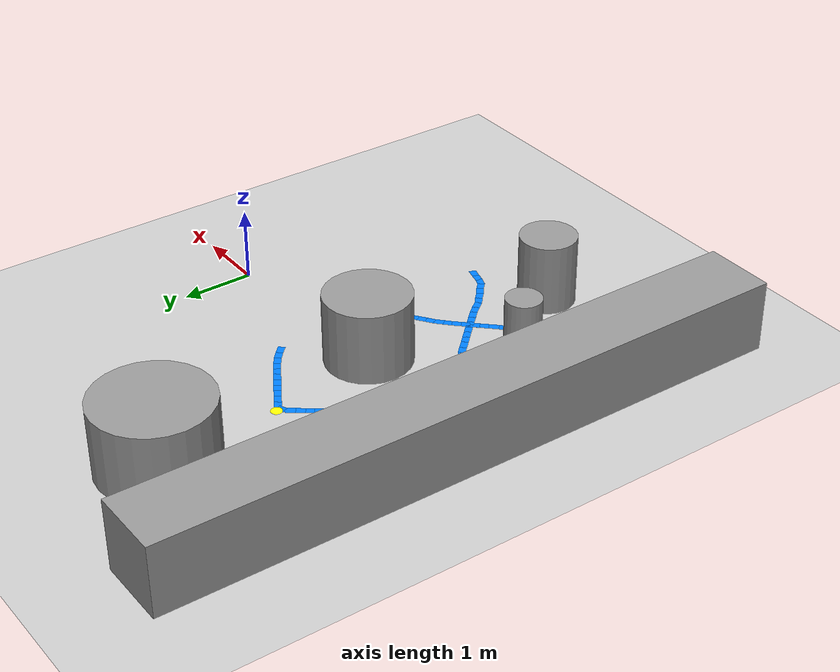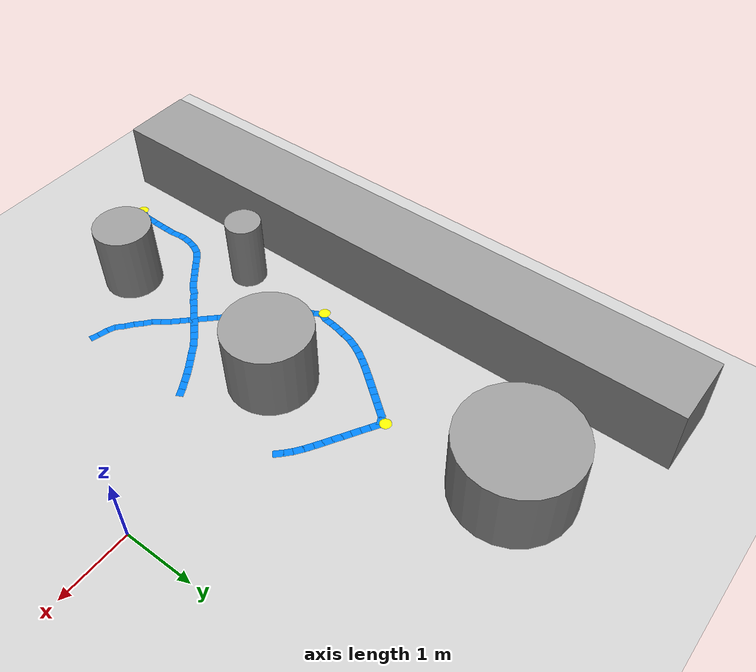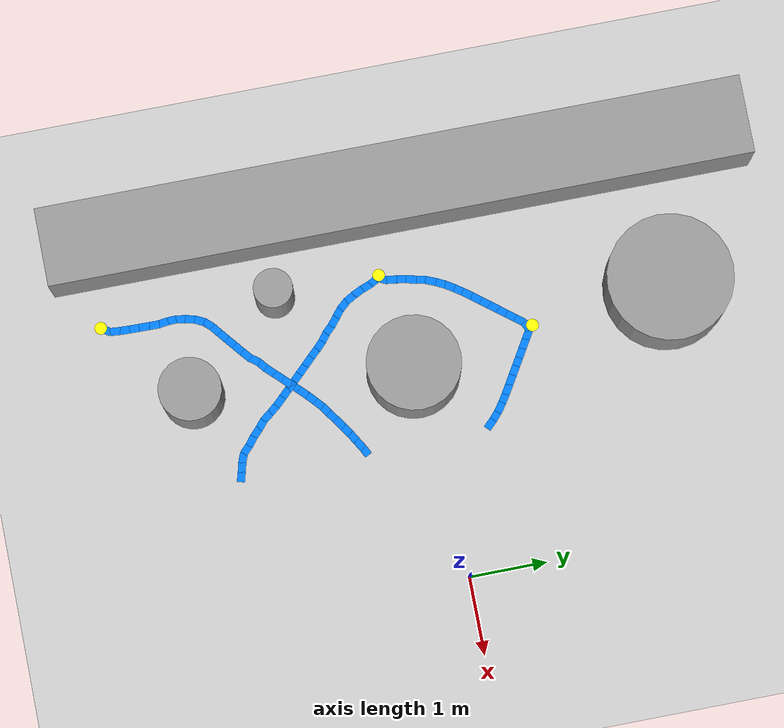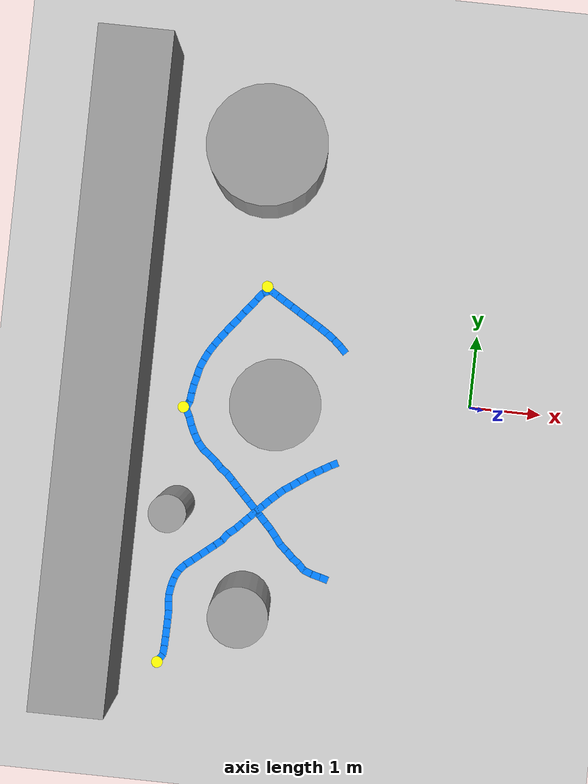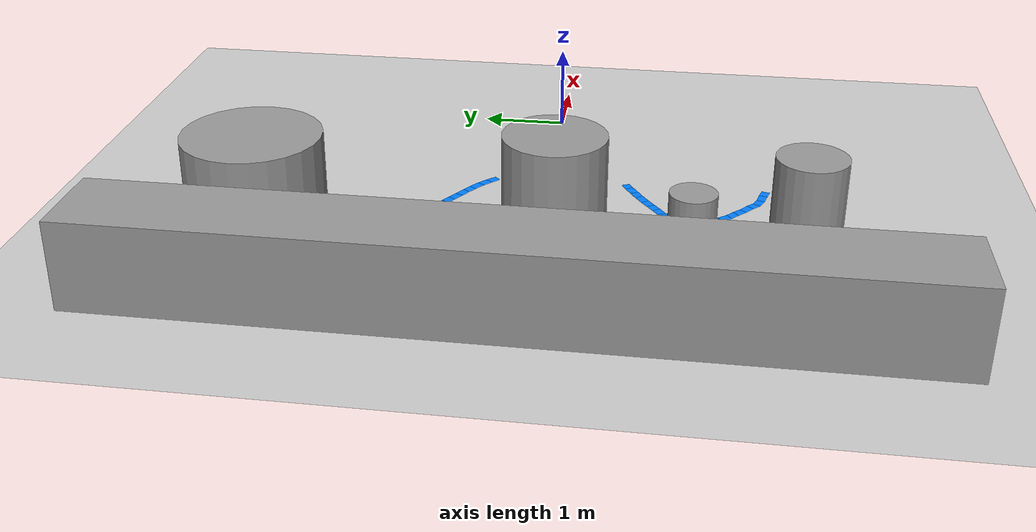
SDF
<sdf version="1.6">
 <world name="default">
  <include><uri>model://sun</uri></include>
  <include><uri>model://ground_plane</uri></include>
  <model name="wall_west">
   <static>true</static>
   <pose>-5.0 0 0.5 0 0 0</pose>
   <link name="link">
    <collision name="collision"><geometry><box><size>1.0 9.0 1.0</size></box></geometry></collision>
    <visual name="visual">
     <geometry><box><size>1.0 9.0 1.0</size></box></geometry>
     <material>
      <script><uri>file://media/materials/scripts/gazebo.material</uri><name>Gazebo/Grey</name></script>
     </material>
    </visual>
   </link>
  </model>
  <model name="obstacle_8">
   <static>true</static>
   <pose>-2.6999999999999997 -0.1999999999999993 0.5 0 0 0</pose>
   <link name="link">
    <visual name="visual">
     <geometry><cylinder><radius>0.6000000000000001</radius><length>1.0</length></cylinder></geometry>
     <material>
      <script><uri>file://media/materials/scripts/gazebo.material</uri><name>Gazebo/Grey</name></script>
     </material>
    </visual>
    <collision name="collision">
     <geometry><cylinder><radius>0.6000000000000001</radius><length>1.0</length></cylinder></geometry>
    </collision>
   </link>
  </model>
  <model name="obstacle_11">
   <static>true</static>
   <pose>-2.9 -3.0 0.5 0 0 0</pose>
   <link name="link">
    <visual name="visual">
     <geometry><cylinder><radius>0.4</radius><length>1.0</length></cylinder></geometry>
     <material>
      <script><uri>file://media/materials/scripts/gazebo.material</uri><name>Gazebo/Grey</name></script>
     </material>
    </visual>
    <collision name="collision">
     <geometry><cylinder><radius>0.4</radius><length>1.0</length></cylinder></geometry>
    </collision>
   </link>
  </model>
  <model name="obstacle_13">
   <static>true</static>
   <pose>-3.15 3.1500000000000004 0.5 0 0 0</pose>
   <link name="link">
    <visual name="visual">
     <geometry><cylinder><radius>0.8</radius><length>1.0</length></cylinder></geometry>
     <material>
      <script><uri>file://media/materials/scripts/gazebo.material</uri><name>Gazebo/Grey</name></script>
     </material>
    </visual>
    <collision name="collision">
     <geometry><cylinder><radius>0.8</radius><length>1.0</length></cylinder></geometry>
    </collision>
   </link>
  </model>
  <model name="obstacle_14">
   <static>true</static>
   <pose>-3.95 -1.75 0.5 0 0 0</pose>
   <link name="link">
    <visual name="visual">
     <geometry><cylinder><radius>0.25</radius><length>1.0</length></cylinder></geometry>
     <material>
      <script><uri>file://media/materials/scripts/gazebo.material</uri><name>Gazebo/Grey</name></script>
     </material>
    </visual>
    <collision name="collision">
     <geometry><cylinder><radius>0.25</radius><length>1.0</length></cylinder></geometry>
    </collision>
   </link>
  </model>
  <model name="yellow_dot_marker_0">
   <static>true</static>
   <pose>-4.0 -4.0 0.00015 0 0 0</pose>
   <link name="link">
    <visual name="visual">
     <geometry><cylinder><radius>0.08</radius><length>0.0001</length></cylinder></geometry>
     <material><ambient>1 1 0 1</ambient><diffuse>1 1 0 1</diffuse></material>
    </visual>
   </link>
  </model>
  <model name="yellow_dot_marker_2">
   <static>true</static>
   <pose>-3.0 1.4 0.00015 0 0 0</pose>
   <link name="link">
    <visual name="visual">
     <geometry><cylinder><radius>0.08</radius><length>0.0001</length></cylinder></geometry>
     <material><ambient>1 1 0 1</ambient><diffuse>1 1 0 1</diffuse></material>
    </visual>
   </link>
  </model>
  <model name="yellow_dot_marker_3">
   <static>true</static>
   <pose>-4.0 -0.4 0.00015 0 0 0</pose>
   <link name="link">
    <visual name="visual">
     <geometry><cylinder><radius>0.08</radius><length>0.0001</length></cylinder></geometry>
     <material><ambient>1 1 0 1</ambient><diffuse>1 1 0 1</diffuse></material>
    </visual>
   </link>
  </model>
  <model name="painted_floor_segment_8">
   <static>true</static>
   <pose>-3.964486265182495 -3.9446245193481446 0.0001 0 0 1.000543018363821</pose>
   <link name="link">
    <visual name="visual">
     <geometry><box><size>0.14472705004822853 0.1 0.0001</size></box></geometry>
     <material><ambient>0 0.5 1 1.0</ambient><diffuse>0 0.5 1 1.0</diffuse></material>
    </visual>
   </link>
  </model>
  <model name="painted_floor_segment_9">
   <static>true</static>
   <pose>-3.9241006851196287 -3.826993465423584 0.0001 0 0 1.4926999184052112</pose>
   <link name="link">
    <visual name="visual">
     <geometry><box><size>0.13738099502224588 0.1 0.0001</size></box></geometry>
     <material><ambient>0 0.5 1 1.0</ambient><diffuse>0 0.5 1 1.0</diffuse></material>
    </visual>
   </link>
  </model>
  <model name="painted_floor_segment_10">
   <static>true</static>
   <pose>-3.917337036132812 -3.702267074584961 0.0001 0 0 1.540522579244965</pose>
   <link name="link">
    <visual name="visual">
     <geometry><box><size>0.13749880264479333 0.1 0.0001</size></box></geometry>
     <material><ambient>0 0.5 1 1.0</ambient><diffuse>0 0.5 1 1.0</diffuse></material>
    </visual>
   </link>
  </model>
  <model name="painted_floor_segment_11">
   <static>true</static>
   <pose>-3.91410608291626 -3.577310848236084 0.0001 0 0 1.549368212107302</pose>
   <link name="link">
    <visual name="visual">
     <geometry><box><size>0.13749946552374812 0.1 0.0001</size></box></geometry>
     <material><ambient>0 0.5 1 1.0</ambient><diffuse>0 0.5 1 1.0</diffuse></material>
    </visual>
   </link>
  </model>
  <model name="painted_floor_segment_12">
   <static>true</static>
   <pose>-3.9118096351623537 -3.452332782745361 0.0001 0 0 1.5554789525571024</pose>
   <link name="link">
    <visual name="visual">
     <geometry><box><size>0.13749997469804387 0.1 0.0001</size></box></geometry>
     <material><ambient>0 0.5 1 1.0</ambient><diffuse>0 0.5 1 1.0</diffuse></material>
    </visual>
   </link>
  </model>
  <model name="painted_floor_segment_13">
   <static>true</static>
   <pose>-3.9103771686553954 -3.3273425102233887 0.0001 0 0 1.5631934916063137</pose>
   <link name="link">
    <visual name="visual">
     <geometry><box><size>0.13749872869869983 0.1 0.0001</size></box></geometry>
     <material><ambient>0 0.5 1 1.0</ambient><diffuse>0 0.5 1 1.0</diffuse></material>
    </visual>
   </link>
  </model>
  <model name="painted_floor_segment_14">
   <static>true</static>
   <pose>-3.918515920639038 -3.203924369812012 0.0001 0 0 1.7112611970181686</pose>
   <link name="link">
    <visual name="visual">
     <geometry><box><size>0.1353582952865057 0.1 0.0001</size></box></geometry>
     <material><ambient>0 0.5 1 1.0</ambient><diffuse>0 0.5 1 1.0</diffuse></material>
    </visual>
   </link>
  </model>
  <model name="painted_floor_segment_15">
   <static>true</static>
   <pose>-3.9284414291381835 -3.0937914848327637 0.0001 0 0 1.5974416221149716</pose>
   <link name="link">
    <visual name="visual">
     <geometry><box><size>0.10830563753813792 0.1 0.0001</size></box></geometry>
     <material><ambient>0 0.5 1 1.0</ambient><diffuse>0 0.5 1 1.0</diffuse></material>
    </visual>
   </link>
  </model>
  <model name="painted_floor_segment_16">
   <static>true</static>
   <pose>-3.9214930057525637 -2.982635116577148 0.0001 0 0 1.4382319367178795</pose>
   <link name="link">
    <visual name="visual">
     <geometry><box><size>0.13748306607247074 0.1 0.0001</size></box></geometry>
     <material><ambient>0 0.5 1 1.0</ambient><diffuse>0 0.5 1 1.0</diffuse></material>
    </visual>
   </link>
  </model>
  <model name="painted_floor_segment_17">
   <static>true</static>
   <pose>-3.8974846839904784 -2.8612313270568848 0.0001 0 0 1.311884678244083</pose>
   <link name="link">
    <visual name="visual">
     <geometry><box><size>0.13532190708098543 0.1 0.0001</size></box></geometry>
     <material><ambient>0 0.5 1 1.0</ambient><diffuse>0 0.5 1 1.0</diffuse></material>
    </visual>
   </link>
  </model>
  <model name="painted_floor_segment_18">
   <static>true</static>
   <pose>-3.8555225372314452 -2.746577262878418 0.0001 0 0 1.127398954808289</pose>
   <link name="link">
    <visual name="visual">
     <geometry><box><size>0.1344265540606072 0.1 0.0001</size></box></geometry>
     <material><ambient>0 0.5 1 1.0</ambient><diffuse>0 0.5 1 1.0</diffuse></material>
    </visual>
   </link>
  </model>
  <model name="painted_floor_segment_19">
   <static>true</static>
   <pose>-3.7889992713928224 -2.647426414489746 0.0001 0 0 0.8286524071926276</pose>
   <link name="link">
    <visual name="visual">
     <geometry><box><size>0.13120984737172997 0.1 0.0001</size></box></geometry>
     <material><ambient>0 0.5 1 1.0</ambient><diffuse>0 0.5 1 1.0</diffuse></material>
    </visual>
   </link>
  </model>
  <model name="painted_floor_segment_20">
   <static>true</static>
   <pose>-3.700034809112549 -2.5648658752441404 0.0001 0 0 0.67071707286733</pose>
   <link name="link">
    <visual name="visual">
     <geometry><box><size>0.13664070550553534 0.1 0.0001</size></box></geometry>
     <material><ambient>0 0.5 1 1.0</ambient><diffuse>0 0.5 1 1.0</diffuse></material>
    </visual>
   </link>
  </model>
  <model name="painted_floor_segment_21">
   <static>true</static>
   <pose>-3.6029921531677247 -2.486802291870117 0.0001 0 0 0.6841148006691818</pose>
   <link name="link">
    <visual name="visual">
     <geometry><box><size>0.13736217332315934 0.1 0.0001</size></box></geometry>
     <material><ambient>0 0.5 1 1.0</ambient><diffuse>0 0.5 1 1.0</diffuse></material>
    </visual>
   </link>
  </model>
  <model name="painted_floor_segment_22">
   <static>true</static>
   <pose>-3.506577968597412 -2.4073508262634276 0.0001 0 0 0.6943660819577947</pose>
   <link name="link">
    <visual name="visual">
     <geometry><box><size>0.137493824871798 0.1 0.0001</size></box></geometry>
     <material><ambient>0 0.5 1 1.0</ambient><diffuse>0 0.5 1 1.0</diffuse></material>
    </visual>
   </link>
  </model>
  <model name="painted_floor_segment_23">
   <static>true</static>
   <pose>-3.410227584838867 -2.327775478363037 0.0001 0 0 0.6862972166660504</pose>
   <link name="link">
    <visual name="visual">
     <geometry><box><size>0.13742596565833706 0.1 0.0001</size></box></geometry>
     <material><ambient>0 0.5 1 1.0</ambient><diffuse>0 0.5 1 1.0</diffuse></material>
    </visual>
   </link>
  </model>
  <model name="painted_floor_segment_24">
   <static>true</static>
   <pose>-3.314275932312012 -2.2477664947509766 0.0001 0 0 0.7037846491571043</pose>
   <link name="link">
    <visual name="visual">
     <geometry><box><size>0.13743628358883664 0.1 0.0001</size></box></geometry>
     <material><ambient>0 0.5 1 1.0</ambient><diffuse>0 0.5 1 1.0</diffuse></material>
    </visual>
   </link>
  </model>
  <model name="painted_floor_segment_25">
   <static>true</static>
   <pose>-3.2299831390380858 -2.1578964233398437 0.0001 0 0 0.9327338741590482</pose>
   <link name="link">
    <visual name="visual">
     <geometry><box><size>0.13542221461259812 0.1 0.0001</size></box></geometry>
     <material><ambient>0 0.5 1 1.0</ambient><diffuse>0 0.5 1 1.0</diffuse></material>
    </visual>
   </link>
  </model>
  <model name="painted_floor_segment_26">
   <static>true</static>
   <pose>-3.145399188995361 -2.06917667388916 0.0001 0 0 0.6865880051060689</pose>
   <link name="link">
    <visual name="visual">
     <geometry><box><size>0.13630714739083225 0.1 0.0001</size></box></geometry>
     <material><ambient>0 0.5 1 1.0</ambient><diffuse>0 0.5 1 1.0</diffuse></material>
    </visual>
   </link>
  </model>
  <model name="painted_floor_segment_27">
   <static>true</static>
   <pose>-3.0542016983032223 -1.9848188400268554 0.0001 0 0 0.8058133577791681</pose>
   <link name="link">
    <visual name="visual">
     <geometry><box><size>0.1374863680467112 0.1 0.0001</size></box></geometry>
     <material><ambient>0 0.5 1 1.0</ambient><diffuse>0 0.5 1 1.0</diffuse></material>
    </visual>
   </link>
  </model>
  <model name="painted_floor_segment_28">
   <static>true</static>
   <pose>-2.9675513267517086 -1.8947366714477538 0.0001 0 0 0.8038142172156121</pose>
   <link name="link">
    <visual name="visual">
     <geometry><box><size>0.1374969078860268 0.1 0.0001</size></box></geometry>
     <material><ambient>0 0.5 1 1.0</ambient><diffuse>0 0.5 1 1.0</diffuse></material>
    </visual>
   </link>
  </model>
  <model name="painted_floor_segment_29">
   <static>true</static>
   <pose>-2.8804348945617675 -1.8050996780395507 0.0001 0 0 0.795500835259482</pose>
   <link name="link">
    <visual name="visual">
     <geometry><box><size>0.13749722510626963 0.1 0.0001</size></box></geometry>
     <material><ambient>0 0.5 1 1.0</ambient><diffuse>0 0.5 1 1.0</diffuse></material>
    </visual>
   </link>
  </model>
  <model name="painted_floor_segment_30">
   <static>true</static>
   <pose>-2.792827701568603 -1.7159399032592773 0.0001 0 0 0.7928614763536536</pose>
   <link name="link">
    <visual name="visual">
     <geometry><box><size>0.1374984885028695 0.1 0.0001</size></box></geometry>
     <material><ambient>0 0.5 1 1.0</ambient><diffuse>0 0.5 1 1.0</diffuse></material>
    </visual>
   </link>
  </model>
  <model name="painted_floor_segment_31">
   <static>true</static>
   <pose>-2.7049795150756832 -1.627016258239746 0.0001 0 0 0.7901024674757571</pose>
   <link name="link">
    <visual name="visual">
     <geometry><box><size>0.13749929607095207 0.1 0.0001</size></box></geometry>
     <material><ambient>0 0.5 1 1.0</ambient><diffuse>0 0.5 1 1.0</diffuse></material>
    </visual>
   </link>
  </model>
  <model name="painted_floor_segment_32">
   <static>true</static>
   <pose>-2.6153587341308593 -1.5402891159057615 0.0001 0 0 0.7477919500363458</pose>
   <link name="link">
    <visual name="visual">
     <geometry><box><size>0.13693202775980676 0.1 0.0001</size></box></geometry>
     <material><ambient>0 0.5 1 1.0</ambient><diffuse>0 0.5 1 1.0</diffuse></material>
    </visual>
   </link>
  </model>
  <model name="painted_floor_segment_33">
   <static>true</static>
   <pose>-2.5246813774108885 -1.457575988769531 0.0001 0 0 0.7309650699523313</pose>
   <link name="link">
    <visual name="visual">
     <geometry><box><size>0.13309420641056458 0.1 0.0001</size></box></geometry>
     <material><ambient>0 0.5 1 1.0</ambient><diffuse>0 0.5 1 1.0</diffuse></material>
    </visual>
   </link>
  </model>
  <model name="painted_floor_segment_34">
   <static>true</static>
   <pose>-2.4319962501525874 -1.385039710998535 0.0001 0 0 0.5936041954478224</pose>
   <link name="link">
    <visual name="visual">
     <geometry><box><size>0.12644563473085496 0.1 0.0001</size></box></geometry>
     <material><ambient>0 0.5 1 1.0</ambient><diffuse>0 0.5 1 1.0</diffuse></material>
    </visual>
   </link>
  </model>
  <model name="painted_floor_segment_35">
   <static>true</static>
   <pose>-2.3338808059692377 -1.3161333084106444 0.0001 0 0 0.6294469245757159</pose>
   <link name="link">
    <visual name="visual">
     <geometry><box><size>0.13736493770954472 0.1 0.0001</size></box></geometry>
     <material><ambient>0 0.5 1 1.0</ambient><diffuse>0 0.5 1 1.0</diffuse></material>
    </visual>
   </link>
  </model>
  <model name="painted_floor_segment_36">
   <static>true</static>
   <pose>-2.2324062347412106 -1.243286323547363 0.0001 0 0 0.6158138653526317</pose>
   <link name="link">
    <visual name="visual">
     <geometry><box><size>0.13745457545146364 0.1 0.0001</size></box></geometry>
     <material><ambient>0 0.5 1 1.0</ambient><diffuse>0 0.5 1 1.0</diffuse></material>
    </visual>
   </link>
  </model>
  <model name="painted_floor_segment_37">
   <static>true</static>
   <pose>-2.129111862182617 -1.1730400085449215 0.0001 0 0 0.5786147985799008</pose>
   <link name="link">
    <visual name="visual">
     <geometry><box><size>0.13741050154686377 0.1 0.0001</size></box></geometry>
     <material><ambient>0 0.5 1 1.0</ambient><diffuse>0 0.5 1 1.0</diffuse></material>
    </visual>
   </link>
  </model>
  <model name="painted_floor_segment_38">
   <static>true</static>
   <pose>-2.02307014465332 -1.1070499420166011 0.0001 0 0 0.534703493436777</pose>
   <link name="link">
    <visual name="visual">
     <geometry><box><size>0.13743155399654844 0.1 0.0001</size></box></geometry>
     <material><ambient>0 0.5 1 1.0</ambient><diffuse>0 0.5 1 1.0</diffuse></material>
    </visual>
   </link>
  </model>
  <model name="painted_floor_segment_39">
   <static>true</static>
   <pose>-1.9158472061157226 -1.0431093215942377 0.0001 0 0 0.5407394113139087</pose>
   <link name="link">
    <visual name="visual">
     <geometry><box><size>0.13721889412033317 0.1 0.0001</size></box></geometry>
     <material><ambient>0 0.5 1 1.0</ambient><diffuse>0 0.5 1 1.0</diffuse></material>
    </visual>
   </link>
  </model>
  <model name="painted_floor_segment_40">
   <static>true</static>
   <pose>-1.8144014358520506 -0.9864919662475584 0.0001 0 0 0.47234532752772107</pose>
   <link name="link">
    <visual name="visual">
     <geometry><box><size>0.11851613684986471 0.1 0.0001</size></box></geometry>
     <material><ambient>0 0.5 1 1.0</ambient><diffuse>0 0.5 1 1.0</diffuse></material>
    </visual>
   </link>
  </model>
  <model name="painted_floor_segment_55">
   <static>true</static>
   <pose>-1.857036781311035 0.6298322677612309 0.0001 0 0 2.3492491382213068</pose>
   <link name="link">
    <visual name="visual">
     <geometry><box><size>0.13747794674516553 0.1 0.0001</size></box></geometry>
     <material><ambient>0 0.5 1 1.0</ambient><diffuse>0 0.5 1 1.0</diffuse></material>
    </visual>
   </link>
  </model>
  <model name="painted_floor_segment_56">
   <static>true</static>
   <pose>-1.9476573944091795 0.7157869338989262 0.0001 0 0 2.415981856648868</pose>
   <link name="link">
    <visual name="visual">
     <geometry><box><size>0.13745763920879167 0.1 0.0001</size></box></geometry>
     <material><ambient>0 0.5 1 1.0</ambient><diffuse>0 0.5 1 1.0</diffuse></material>
    </visual>
   </link>
  </model>
  <model name="painted_floor_segment_57">
   <static>true</static>
   <pose>-2.044946479797363 0.7939910888671879 0.0001 0 0 2.513048597013236</pose>
   <link name="link">
    <visual name="visual">
     <geometry><box><size>0.1374791227922528 0.1 0.0001</size></box></geometry>
     <material><ambient>0 0.5 1 1.0</ambient><diffuse>0 0.5 1 1.0</diffuse></material>
    </visual>
   </link>
  </model>
  <model name="painted_floor_segment_58">
   <static>true</static>
   <pose>-2.148054695129394 0.8645126342773439 0.0001 0 0 2.5703874220535017</pose>
   <link name="link">
    <visual name="visual">
     <geometry><box><size>0.13745421292264054 0.1 0.0001</size></box></geometry>
     <material><ambient>0 0.5 1 1.0</ambient><diffuse>0 0.5 1 1.0</diffuse></material>
    </visual>
   </link>
  </model>
  <model name="painted_floor_segment_59">
   <static>true</static>
   <pose>-2.2540351867675783 0.9307331085205082 0.0001 0 0 2.5958304582091345</pose>
   <link name="link">
    <visual name="visual">
     <geometry><box><size>0.1374977656919588 0.1 0.0001</size></box></geometry>
     <material><ambient>0 0.5 1 1.0</ambient><diffuse>0 0.5 1 1.0</diffuse></material>
    </visual>
   </link>
  </model>
  <model name="painted_floor_segment_60">
   <static>true</static>
   <pose>-2.360984897613525 0.9954353332519537 0.0001 0 0 2.599211281156006</pose>
   <link name="link">
    <visual name="visual">
     <geometry><box><size>0.13749927029825523 0.1 0.0001</size></box></geometry>
     <material><ambient>0 0.5 1 1.0</ambient><diffuse>0 0.5 1 1.0</diffuse></material>
    </visual>
   </link>
  </model>
  <model name="painted_floor_segment_61">
   <static>true</static>
   <pose>-2.4680415153503414 1.0599624633789069 0.0001 0 0 2.5991128911920143</pose>
   <link name="link">
    <visual name="visual">
     <geometry><box><size>0.13749958536040596 0.1 0.0001</size></box></geometry>
     <material><ambient>0 0.5 1 1.0</ambient><diffuse>0 0.5 1 1.0</diffuse></material>
    </visual>
   </link>
  </model>
  <model name="painted_floor_segment_62">
   <static>true</static>
   <pose>-2.575103378295898 1.124481582641602 0.0001 0 0 2.5993643789582817</pose>
   <link name="link">
    <visual name="visual">
     <geometry><box><size>0.1375000581941438 0.1 0.0001</size></box></geometry>
     <material><ambient>0 0.5 1 1.0</ambient><diffuse>0 0.5 1 1.0</diffuse></material>
    </visual>
   </link>
  </model>
  <model name="painted_floor_segment_63">
   <static>true</static>
   <pose>-2.6822025299072263 1.188938903808594 0.0001 0 0 2.60026771770656</pose>
   <link name="link">
    <visual name="visual">
     <geometry><box><size>0.13749974570190332 0.1 0.0001</size></box></geometry>
     <material><ambient>0 0.5 1 1.0</ambient><diffuse>0 0.5 1 1.0</diffuse></material>
    </visual>
   </link>
  </model>
  <model name="painted_floor_segment_64">
   <static>true</static>
   <pose>-2.7893298149108885 1.2533493041992192 0.0001 0 0 2.600239717989911</pose>
   <link name="link">
    <visual name="visual">
     <geometry><box><size>0.1374998571872407 0.1 0.0001</size></box></geometry>
     <material><ambient>0 0.5 1 1.0</ambient><diffuse>0 0.5 1 1.0</diffuse></material>
    </visual>
   </link>
  </model>
  <model name="painted_floor_segment_65">
   <static>true</static>
   <pose>-2.8964465141296385 1.3177776336669926 0.0001 0 0 2.599934593885252</pose>
   <link name="link">
    <visual name="visual">
     <geometry><box><size>0.13750011864094236 0.1 0.0001</size></box></geometry>
     <material><ambient>0 0.5 1 1.0</ambient><diffuse>0 0.5 1 1.0</diffuse></material>
    </visual>
   </link>
  </model>
  <model name="painted_floor_segment_66">
   <static>true</static>
   <pose>-3.000932216644287 1.3275234222412116 0.0001 0 0 -2.7259940275624173</pose>
   <link name="link">
    <visual name="visual">
     <geometry><box><size>0.12247673347142243 0.1 0.0001</size></box></geometry>
     <material><ambient>0 0.5 1 1.0</ambient><diffuse>0 0.5 1 1.0</diffuse></material>
    </visual>
   </link>
  </model>
  <model name="painted_floor_segment_67">
   <static>true</static>
   <pose>-3.0898439407348635 1.2554111480712895 0.0001 0 0 -2.2239327235139417</pose>
   <link name="link">
    <visual name="visual">
     <geometry><box><size>0.13749815804348647 0.1 0.0001</size></box></geometry>
     <material><ambient>0 0.5 1 1.0</ambient><diffuse>0 0.5 1 1.0</diffuse></material>
    </visual>
   </link>
  </model>
  <model name="painted_floor_segment_68">
   <static>true</static>
   <pose>-3.1662339210510253 1.1564712524414067 0.0001 0 0 -2.232632159662296</pose>
   <link name="link">
    <visual name="visual">
     <geometry><box><size>0.1375003253653485 0.1 0.0001</size></box></geometry>
     <material><ambient>0 0.5 1 1.0</ambient><diffuse>0 0.5 1 1.0</diffuse></material>
    </visual>
   </link>
  </model>
  <model name="painted_floor_segment_69">
   <static>true</static>
   <pose>-3.2431792259216308 1.0579605102539067 0.0001 0 0 -2.2351620742395</pose>
   <link name="link">
    <visual name="visual">
     <geometry><box><size>0.13749942180816302 0.1 0.0001</size></box></geometry>
     <material><ambient>0 0.5 1 1.0</ambient><diffuse>0 0.5 1 1.0</diffuse></material>
    </visual>
   </link>
  </model>
  <model name="painted_floor_segment_70">
   <static>true</static>
   <pose>-3.320301055908203 0.9595878601074221 0.0001 0 0 -2.2362181013011453</pose>
   <link name="link">
    <visual name="visual">
     <geometry><box><size>0.1375002201506849 0.1 0.0001</size></box></geometry>
     <material><ambient>0 0.5 1 1.0</ambient><diffuse>0 0.5 1 1.0</diffuse></material>
    </visual>
   </link>
  </model>
  <model name="painted_floor_segment_71">
   <static>true</static>
   <pose>-3.3974737167358398 0.8612546920776372 0.0001 0 0 -2.2361918758784474</pose>
   <link name="link">
    <visual name="visual">
     <geometry><box><size>0.13750005719594152 0.1 0.0001</size></box></geometry>
     <material><ambient>0 0.5 1 1.0</ambient><diffuse>0 0.5 1 1.0</diffuse></material>
    </visual>
   </link>
  </model>
  <model name="painted_floor_segment_72">
   <static>true</static>
   <pose>-3.474318790435791 0.7626668930053717 0.0001 0 0 -2.229579516160374</pose>
   <link name="link">
    <visual name="visual">
     <geometry><box><size>0.13749897718001125 0.1 0.0001</size></box></geometry>
     <material><ambient>0 0.5 1 1.0</ambient><diffuse>0 0.5 1 1.0</diffuse></material>
    </visual>
   </link>
  </model>
  <model name="painted_floor_segment_73">
   <static>true</static>
   <pose>-3.549797248840332 0.6630388259887701 0.0001 0 0 -2.20871070375758</pose>
   <link name="link">
    <visual name="visual">
     <geometry><box><size>0.1374961871734009 0.1 0.0001</size></box></geometry>
     <material><ambient>0 0.5 1 1.0</ambient><diffuse>0 0.5 1 1.0</diffuse></material>
    </visual>
   </link>
  </model>
  <model name="painted_floor_segment_74">
   <static>true</static>
   <pose>-3.6226661682128904 0.5615005493164067 0.0001 0 0 -2.177828416432309</pose>
   <link name="link">
    <visual name="visual">
     <geometry><box><size>0.13749172020151776 0.1 0.0001</size></box></geometry>
     <material><ambient>0 0.5 1 1.0</ambient><diffuse>0 0.5 1 1.0</diffuse></material>
    </visual>
   </link>
  </model>
  <model name="painted_floor_segment_75">
   <static>true</static>
   <pose>-3.69121732711792 0.45704421997070366 0.0001 0 0 -2.1252963066167423</pose>
   <link name="link">
    <visual name="visual">
     <geometry><box><size>0.13747449255446223 0.1 0.0001</size></box></geometry>
     <material><ambient>0 0.5 1 1.0</ambient><diffuse>0 0.5 1 1.0</diffuse></material>
    </visual>
   </link>
  </model>
  <model name="painted_floor_segment_76">
   <static>true</static>
   <pose>-3.7518153190612793 0.34790363311767614 0.0001 0 0 -2.0299938936758446</pose>
   <link name="link">
    <visual name="visual">
     <geometry><box><size>0.13747466588905022 0.1 0.0001</size></box></geometry>
     <material><ambient>0 0.5 1 1.0</ambient><diffuse>0 0.5 1 1.0</diffuse></material>
    </visual>
   </link>
  </model>
  <model name="painted_floor_segment_77">
   <static>true</static>
   <pose>-3.80313720703125 0.23414478302001962 0.0001 0 0 -1.9591563304931516</pose>
   <link name="link">
    <visual name="visual">
     <geometry><box><size>0.13725739493104538 0.1 0.0001</size></box></geometry>
     <material><ambient>0 0.5 1 1.0</ambient><diffuse>0 0.5 1 1.0</diffuse></material>
    </visual>
   </link>
  </model>
  <model name="painted_floor_segment_78">
   <static>true</static>
   <pose>-3.8406675338745115 0.11567478179931667 0.0001 0 0 -1.7958961002360092</pose>
   <link name="link">
    <visual name="visual">
     <geometry><box><size>0.13705564578308566 0.1 0.0001</size></box></geometry>
     <material><ambient>0 0.5 1 1.0</ambient><diffuse>0 0.5 1 1.0</diffuse></material>
    </visual>
   </link>
  </model>
  <model name="painted_floor_segment_79">
   <static>true</static>
   <pose>-3.8691859245300293 -0.005457878112792525 0.0001 0 0 -1.8081520987450592</pose>
   <link name="link">
    <visual name="visual">
     <geometry><box><size>0.13672727389543135 0.1 0.0001</size></box></geometry>
     <material><ambient>0 0.5 1 1.0</ambient><diffuse>0 0.5 1 1.0</diffuse></material>
    </visual>
   </link>
  </model>
  <model name="painted_floor_segment_80">
   <static>true</static>
   <pose>-3.894353675842285 -0.12717571258544869 0.0001 0 0 -1.7412709821862498</pose>
   <link name="link">
    <visual name="visual">
     <geometry><box><size>0.13686937860288445 0.1 0.0001</size></box></geometry>
     <material><ambient>0 0.5 1 1.0</ambient><diffuse>0 0.5 1 1.0</diffuse></material>
    </visual>
   </link>
  </model>
  <model name="painted_floor_segment_81">
   <static>true</static>
   <pose>-3.912142515182495 -0.2501052856445307 0.0001 0 0 -1.6876674105770146</pose>
   <link name="link">
    <visual name="visual">
     <geometry><box><size>0.13649078545131607 0.1 0.0001</size></box></geometry>
     <material><ambient>0 0.5 1 1.0</ambient><diffuse>0 0.5 1 1.0</diffuse></material>
    </visual>
   </link>
  </model>
  <model name="painted_floor_segment_82">
   <static>true</static>
   <pose>-3.9423916816711424 -0.3634778976440427 0.0001 0 0 -1.9892271702426616</pose>
   <link name="link">
    <visual name="visual">
     <geometry><box><size>0.12461049337819104 0.1 0.0001</size></box></geometry>
     <material><ambient>0 0.5 1 1.0</ambient><diffuse>0 0.5 1 1.0</diffuse></material>
    </visual>
   </link>
  </model>
  <model name="painted_floor_segment_83">
   <static>true</static>
   <pose>-3.9358972549438476 -0.4702466964721679 0.0001 0 0 -1.0784597783919676</pose>
   <link name="link">
    <visual name="visual">
     <geometry><box><size>0.13734347676761852 0.1 0.0001</size></box></geometry>
     <material><ambient>0 0.5 1 1.0</ambient><diffuse>0 0.5 1 1.0</diffuse></material>
    </visual>
   </link>
  </model>
  <model name="painted_floor_segment_84">
   <static>true</static>
   <pose>-3.884522008895874 -0.5837629318237303 0.0001 0 0 -1.2131090559994806</pose>
   <link name="link">
    <visual name="visual">
     <geometry><box><size>0.1374006330326099 0.1 0.0001</size></box></geometry>
     <material><ambient>0 0.5 1 1.0</ambient><diffuse>0 0.5 1 1.0</diffuse></material>
    </visual>
   </link>
  </model>
  <model name="painted_floor_segment_85">
   <static>true</static>
   <pose>-3.836015510559082 -0.698649978637695 0.0001 0 0 -1.129410343397971</pose>
   <link name="link">
    <visual name="visual">
     <geometry><box><size>0.13719588011905115 0.1 0.0001</size></box></geometry>
     <material><ambient>0 0.5 1 1.0</ambient><diffuse>0 0.5 1 1.0</diffuse></material>
    </visual>
   </link>
  </model>
  <model name="painted_floor_segment_86">
   <static>true</static>
   <pose>-3.778283882141113 -0.8089277267456052 0.0001 0 0 -1.0475295453049243</pose>
   <link name="link">
    <visual name="visual">
     <geometry><box><size>0.1368796361090615 0.1 0.0001</size></box></geometry>
     <material><ambient>0 0.5 1 1.0</ambient><diffuse>0 0.5 1 1.0</diffuse></material>
    </visual>
   </link>
  </model>
  <model name="painted_floor_segment_87">
   <static>true</static>
   <pose>-3.706760597229004 -0.9098531723022458 0.0001 0 0 -0.8607207537318294</pose>
   <link name="link">
    <visual name="visual">
     <geometry><box><size>0.13645035209816728 0.1 0.0001</size></box></geometry>
     <material><ambient>0 0.5 1 1.0</ambient><diffuse>0 0.5 1 1.0</diffuse></material>
    </visual>
   </link>
  </model>
  <model name="painted_floor_segment_88">
   <static>true</static>
   <pose>-3.6177886962890624 -0.9958560943603514 0.0001 0 0 -0.6764770715293759</pose>
   <link name="link">
    <visual name="visual">
     <geometry><box><size>0.1369450261816509 0.1 0.0001</size></box></geometry>
     <material><ambient>0 0.5 1 1.0</ambient><diffuse>0 0.5 1 1.0</diffuse></material>
    </visual>
   </link>
  </model>
  <model name="painted_floor_segment_89">
   <static>true</static>
   <pose>-3.5219431877136227 -1.0727100372314453 0.0001 0 0 -0.6752452250215507</pose>
   <link name="link">
    <visual name="visual">
     <geometry><box><size>0.13333189762801448 0.1 0.0001</size></box></geometry>
     <material><ambient>0 0.5 1 1.0</ambient><diffuse>0 0.5 1 1.0</diffuse></material>
    </visual>
   </link>
  </model>
  <model name="painted_floor_segment_90">
   <static>true</static>
   <pose>-3.4351902961730953 -1.1522031784057618 0.0001 0 0 -0.812067870492605</pose>
   <link name="link">
    <visual name="visual">
     <geometry><box><size>0.12613917802761432 0.1 0.0001</size></box></geometry>
     <material><ambient>0 0.5 1 1.0</ambient><diffuse>0 0.5 1 1.0</diffuse></material>
    </visual>
   </link>
  </model>
  <model name="painted_floor_segment_91">
   <static>true</static>
   <pose>-3.3464598655700684 -1.2301725387573241 0.0001 0 0 -0.6356308383481913</pose>
   <link name="link">
    <visual name="visual">
     <geometry><box><size>0.13473797568691515 0.1 0.0001</size></box></geometry>
     <material><ambient>0 0.5 1 1.0</ambient><diffuse>0 0.5 1 1.0</diffuse></material>
    </visual>
   </link>
  </model>
  <model name="painted_floor_segment_92">
   <static>true</static>
   <pose>-3.2542526245117185 -1.3099613189697261 0.0001 0 0 -0.7912447583066778</pose>
   <link name="link">
    <visual name="visual">
     <geometry><box><size>0.13433561775874922 0.1 0.0001</size></box></geometry>
     <material><ambient>0 0.5 1 1.0</ambient><diffuse>0 0.5 1 1.0</diffuse></material>
    </visual>
   </link>
  </model>
  <model name="painted_floor_segment_93">
   <static>true</static>
   <pose>-3.1685808181762694 -1.3987916946411127 0.0001 0 0 -0.8154935622736861</pose>
   <link name="link">
    <visual name="visual">
     <geometry><box><size>0.13719049020365154 0.1 0.0001</size></box></geometry>
     <material><ambient>0 0.5 1 1.0</ambient><diffuse>0 0.5 1 1.0</diffuse></material>
    </visual>
   </link>
  </model>
  <model name="painted_floor_segment_94">
   <static>true</static>
   <pose>-3.08198127746582 -1.4887250900268552 0.0001 0 0 -0.7930935728368844</pose>
   <link name="link">
    <visual name="visual">
     <geometry><box><size>0.137496504967735 0.1 0.0001</size></box></geometry>
     <material><ambient>0 0.5 1 1.0</ambient><diffuse>0 0.5 1 1.0</diffuse></material>
    </visual>
   </link>
  </model>
  <model name="painted_floor_segment_95">
   <static>true</static>
   <pose>-2.994722270965576 -1.5782238006591796 0.0001 0 0 -0.8030433716510008</pose>
   <link name="link">
    <visual name="visual">
     <geometry><box><size>0.13749944804583875 0.1 0.0001</size></box></geometry>
     <material><ambient>0 0.5 1 1.0</ambient><diffuse>0 0.5 1 1.0</diffuse></material>
    </visual>
   </link>
  </model>
  <model name="painted_floor_segment_96">
   <static>true</static>
   <pose>-2.907950973510742 -1.66819953918457 0.0001 0 0 -0.8040091782272839</pose>
   <link name="link">
    <visual name="visual">
     <geometry><box><size>0.1374996299664169 0.1 0.0001</size></box></geometry>
     <material><ambient>0 0.5 1 1.0</ambient><diffuse>0 0.5 1 1.0</diffuse></material>
    </visual>
   </link>
  </model>
  <model name="painted_floor_segment_97">
   <static>true</static>
   <pose>-2.8212288856506342 -1.7582227706909177 0.0001 0 0 -0.8041376128427552</pose>
   <link name="link">
    <visual name="visual">
     <geometry><box><size>0.13749951465550317 0.1 0.0001</size></box></geometry>
     <material><ambient>0 0.5 1 1.0</ambient><diffuse>0 0.5 1 1.0</diffuse></material>
    </visual>
   </link>
  </model>
  <model name="painted_floor_segment_98">
   <static>true</static>
   <pose>-2.734579277038574 -1.8483160018920897 0.0001 0 0 -0.8056213861549986</pose>
   <link name="link">
    <visual name="visual">
     <geometry><box><size>0.1375000768552203 0.1 0.0001</size></box></geometry>
     <material><ambient>0 0.5 1 1.0</ambient><diffuse>0 0.5 1 1.0</diffuse></material>
    </visual>
   </link>
  </model>
  <model name="painted_floor_segment_99">
   <static>true</static>
   <pose>-2.6481071472167965 -1.9385797500610351 0.0001 0 0 -0.8080755331788435</pose>
   <link name="link">
    <visual name="visual">
     <geometry><box><size>0.13749989671058335 0.1 0.0001</size></box></geometry>
     <material><ambient>0 0.5 1 1.0</ambient><diffuse>0 0.5 1 1.0</diffuse></material>
    </visual>
   </link>
  </model>
  <model name="painted_floor_segment_100">
   <static>true</static>
   <pose>-2.565417385101318 -2.032062530517578 0.0001 0 0 -0.8851578971607041</pose>
   <link name="link">
    <visual name="visual">
     <geometry><box><size>0.13727814629784146 0.1 0.0001</size></box></geometry>
     <material><ambient>0 0.5 1 1.0</ambient><diffuse>0 0.5 1 1.0</diffuse></material>
    </visual>
   </link>
  </model>
  <model name="painted_floor_segment_101">
   <static>true</static>
   <pose>-2.4880416870117186 -2.12998104095459 0.0001 0 0 -0.918949905968808</pose>
   <link name="link">
    <visual name="visual">
     <geometry><box><size>0.13732098966548503 0.1 0.0001</size></box></geometry>
     <material><ambient>0 0.5 1 1.0</ambient><diffuse>0 0.5 1 1.0</diffuse></material>
    </visual>
   </link>
  </model>
  <model name="painted_floor_segment_102">
   <static>true</static>
   <pose>-2.4028700828552245 -2.219728469848633 0.0001 0 0 -0.7034812084079431</pose>
   <link name="link">
    <visual name="visual">
     <geometry><box><size>0.13646960617091836 0.1 0.0001</size></box></geometry>
     <material><ambient>0 0.5 1 1.0</ambient><diffuse>0 0.5 1 1.0</diffuse></material>
    </visual>
   </link>
  </model>
  <model name="painted_floor_segment_103">
   <static>true</static>
   <pose>-2.311265087127685 -2.3033745765686033 0.0001 0 0 -0.7765088040023569</pose>
   <link name="link">
    <visual name="visual">
     <geometry><box><size>0.1366201521774356 0.1 0.0001</size></box></geometry>
     <material><ambient>0 0.5 1 1.0</ambient><diffuse>0 0.5 1 1.0</diffuse></material>
    </visual>
   </link>
  </model>
  <model name="painted_floor_segment_104">
   <static>true</static>
   <pose>-2.217587471008301 -2.38446044921875 0.0001 0 0 -0.6503781735110065</pose>
   <link name="link">
    <visual name="visual">
     <geometry><box><size>0.13649572800824086 0.1 0.0001</size></box></geometry>
     <material><ambient>0 0.5 1 1.0</ambient><diffuse>0 0.5 1 1.0</diffuse></material>
    </visual>
   </link>
  </model>
  <model name="painted_floor_segment_105">
   <static>true</static>
   <pose>-2.125547409057617 -2.4639842033386232 0.0001 0 0 -0.7770640932359372</pose>
   <link name="link">
    <visual name="visual">
     <geometry><box><size>0.1316418034014257 0.1 0.0001</size></box></geometry>
     <material><ambient>0 0.5 1 1.0</ambient><diffuse>0 0.5 1 1.0</diffuse></material>
    </visual>
   </link>
  </model>
  <model name="painted_floor_segment_106">
   <static>true</static>
   <pose>-2.027380561828613 -2.527922821044922 0.0001 0 0 -0.3770795284607537</pose>
   <link name="link">
    <visual name="visual">
     <geometry><box><size>0.13133693434118282 0.1 0.0001</size></box></geometry>
     <material><ambient>0 0.5 1 1.0</ambient><diffuse>0 0.5 1 1.0</diffuse></material>
    </visual>
   </link>
  </model>
  <model name="painted_floor_segment_107">
   <static>true</static>
   <pose>-1.9120828628540039 -2.5646106719970705 0.0001 0 0 -0.24116743340213173</pose>
   <link name="link">
    <visual name="visual">
     <geometry><box><size>0.13546562006770607 0.1 0.0001</size></box></geometry>
     <material><ambient>0 0.5 1 1.0</ambient><diffuse>0 0.5 1 1.0</diffuse></material>
    </visual>
   </link>
  </model>
  <model name="painted_floor_segment_108">
   <static>true</static>
   <pose>-1.7954614639282225 -2.595866584777832 0.0001 0 0 -0.28338253413638304</pose>
   <link name="link">
    <visual name="visual">
     <geometry><box><size>0.13021548191509372 0.1 0.0001</size></box></geometry>
     <material><ambient>0 0.5 1 1.0</ambient><diffuse>0 0.5 1 1.0</diffuse></material>
    </visual>
   </link>
  </model>
 </world>
</sdf>
